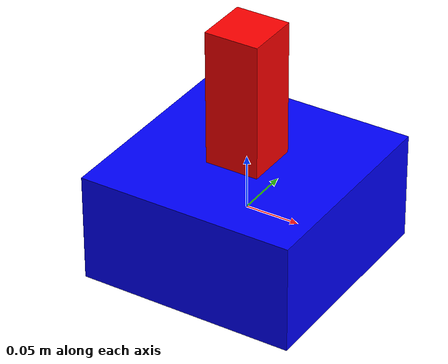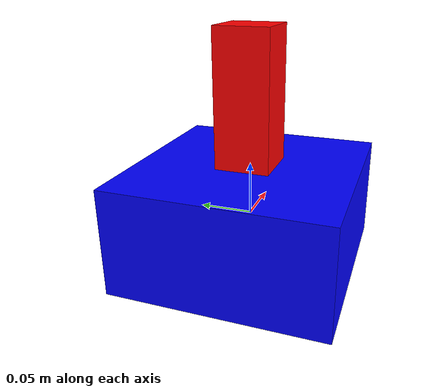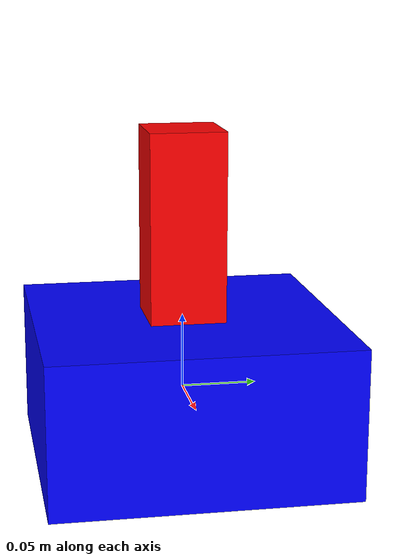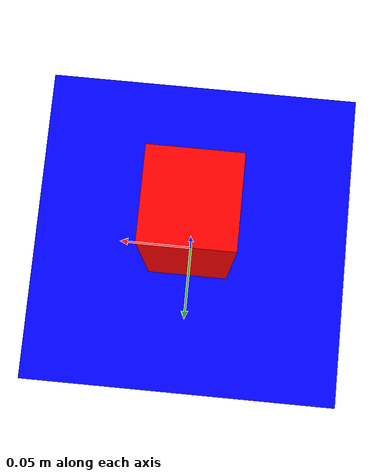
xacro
<?xml version="1.0"?>
<robot xmlns:xacro="http://ros.org/wiki/xacro" name="neptr">
  <xacro:property name="leg_length" value="0.5"/>
  <xacro:property name="link_width" value="0.05"/>

  <link name="base_link">
    <visual>
      <geometry>
        <box size="0.2 0.2 0.1"/>
      </geometry>
      <material name="blue">
        <color rgba="0 0 1 1"/>
      </material>
    </visual>
  </link>

  <!-- Hip Joint -->
  <joint name="hip_joint" type="revolute">
    <parent link="base_link"/>
    <child link="thigh"/>
    <origin xyz="0 0 0.05" rpy="0 0 0"/>
    <axis xyz="0 1 0"/>
    <limit effort="10" velocity="2" lower="-1.57" upper="1.57"/>
  </joint>

  <link name="thigh">
    <visual>
      <geometry>
        <!-- Use xacro to evaluate the expression for the size -->
        <box size="0.05 0.05 0.25"/>
      </geometry>
      <material name="red">
        <color rgba="1 0 0 1"/>
      </material>
    </visual>
  </link>
</robot>
